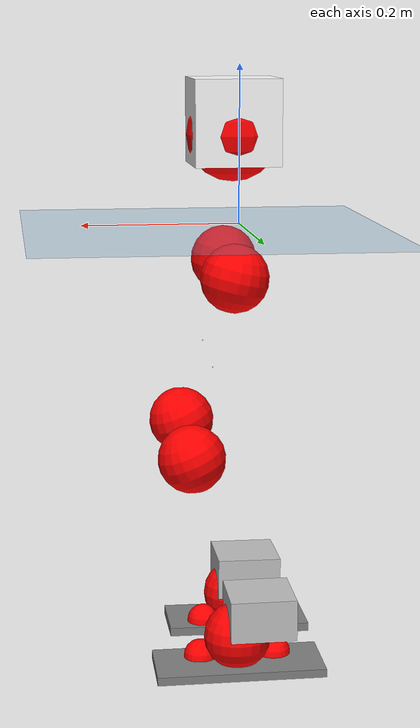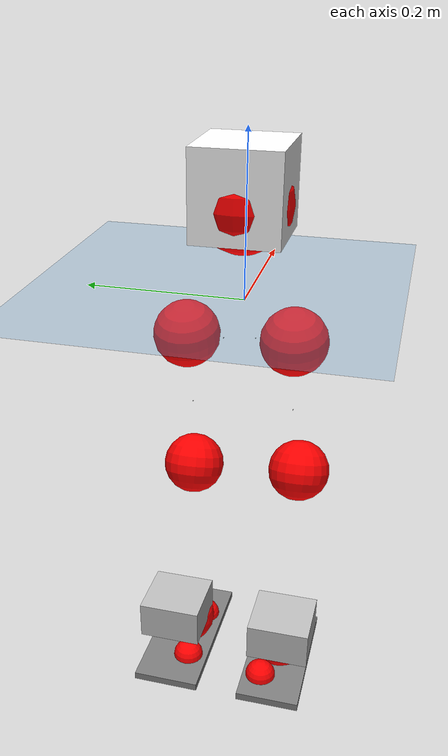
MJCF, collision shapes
<mujoco model="pi_12dof_release_v1">
  <compiler angle="radian" assetdir="assets" balanceinertia="true" inertiafromgeom="false"/>

  <option timestep="0.005" density="1.2" viscosity="2e-05"/>

  <size nkey="1"/>

  <visual>
    <quality shadowsize="8192"/>
    <map shadowclip="0.5"/>
  </visual>

  <default>
    <default class="/">
      <joint armature="0.01" damping="0.01" frictionloss="0.01"/>
      <geom contype="0" conaffinity="0" group="1" solref="-1000 -80"/>
      <site size="0.01 0.005 0.005" group="5"/>
      <general forcelimited="true" biastype="affine" gainprm="20" biasprm="0 -20 -0.5"/>
      <default class="foot">
        <geom size="0.0845 0.036 0.005" type="box" condim="6" group="4" priority="1" friction="0.9 0.2 0.2" solimp="0.015 1 0.005"/>
      </default>
      <default class="reward_collision_sphere">
        <geom group="5" rgba="1 0 0 1"/>
      </default>
    </default>
  </default>

  <asset>
    <texture type="skybox" colorspace="auto" name="//unnamed_texture_0" builtin="gradient" rgb1="0.95 0.95 0.95" rgb2="0.95 0.95 0.95" width="100" height="600"/>
    <texture type="2d" colorspace="auto" name="texplane" builtin="checker" rgb1="0.345 0.575 0.748" rgb2="0.345 0.575 0.748" markrgb="1 1 1" width="512" height="512"/>
    <material name="MatPlane" class="/" texture="texplane" texuniform="true" texrepeat="2 2" specular="0.9"/>
    <mesh name="baselink_1" class="/" file="baselink_1.STL"/>
    <mesh name="r_hip_pitch_link" class="/" file="r_hip_pitch_link.STL"/>
    <mesh name="r_hip_roll_link" class="/" file="r_hip_roll_link.STL"/>
    <mesh name="r_thigh_link" class="/" file="r_thigh_link.STL"/>
    <mesh name="r_calf_link" class="/" file="r_calf_link.STL"/>
    <mesh name="r_ankle_pitch_link" class="/" file="r_ankle_pitch_link.STL"/>
    <mesh name="r_ankle_roll_link" class="/" file="r_ankle_roll_link.STL"/>
    <mesh name="l_hip_pitch_link" class="/" file="l_hip_pitch_link.STL"/>
    <mesh name="l_hip_roll_link" class="/" file="l_hip_roll_link.STL"/>
    <mesh name="l_thigh_link" class="/" file="l_thigh_link.STL"/>
    <mesh name="l_calf_link" class="/" file="l_calf_link.STL"/>
    <mesh name="l_ankle_pitch_link" class="/" file="l_ankle_pitch_link.STL"/>
    <mesh name="l_ankle_roll_link" class="/" file="l_ankle_roll_link.STL"/>
  </asset>

  <worldbody>
    <geom name="floor" class="/" size="100 100 0.125" type="plane" group="0" material="MatPlane"/>
    <light name="toplight_shadow" class="/" pos="0 0 5" dir="0.0990148 0.0990148 -0.990148" type="directional" ambient="0.04 0.04 0.04" diffuse="0.55 0.55 0.55" specular="0.12 0.12 0.12"/>
    <light name="toplight_fill" class="/" pos="0 0 5" dir="0.0990148 0.0990148 -0.990148" type="directional" castshadow="false" ambient="0.04 0.04 0.04" diffuse="0.3 0.3 0.3" specular="0.08 0.08 0.08"/>
    <body name="trunk" pos="0.00817524 0.00412491 0.000558164" quat="0.999996 -0.000783471 0.00251519 -0.000974754">
      <inertial pos="0.0105896 -0.0032297 0.0634545" quat="0.696009 0.00876623 0.00751827 0.71794" mass="2.64037" diaginertia="0.0017311 0.00536872 0.0404868"/>
      <joint name="//unnamed_joint_0" type="free"/>
      <geom name="//unnamed_geom_1" class="/" type="mesh" density="0" rgba="1 1 1 1" mesh="baselink_1"/>
      <geom name="//unnamed_geom_2" class="/" size="0.0536593 0.0536593 0.0536593" pos="0 0 0.128724" type="box" rgba="1 1 1 1"/>
      <geom name="//unnamed_geom_3" class="reward_collision_sphere" size="0.0590253" pos="0 0 0.112633"/>
      <site name="imu" class="/" pos="0.00783134 -0.00126396 -0.00357312" size="0.0107319"/>
      <camera name="track" class="/" pos="0 -1.79981 0" quat="0.707107 0.707107 0 0" mode="trackcom"/>
      <camera name="ego_camera" class="/" pos="0.0532955 0 0.289629" quat="-0.5 -0.5 0.5 0.5"/>
      <body name="r_hip_pitch_link" pos="0.00285888 -0.0176287 -0.053607" quat="0.991769 -0.00222065 -0.128017 0.000696043">
        <inertial pos="0.00974946 -0.0478228 0.00174745" quat="-0.0157876 0.700982 -0.0229092 0.712636" mass="0.409663" diaginertia="1.76574e-05 5.81394e-05 0.000798858"/>
        <joint name="r_hip_pitch_joint" class="/" pos="0 0 0" axis="0.0162837 -0.999793 -0.0122082" stiffness="0.0411008" range="-1.74154 1.25474" armature="0.0104207" damping="0.0367269" frictionloss="0.00842756"/>
        <geom name="//unnamed_geom_4" class="/" type="mesh" density="0" rgba="0.75294 0.75294 0.75294 1" mesh="r_hip_pitch_link"/>
        <geom name="//unnamed_geom_5" class="/" size="0.000536593 0.000536593 0.000536593" type="box" rgba="0.75294 0.75294 0.75294 1"/>
        <body name="r_hip_roll_link" pos="0.000206946 -0.0484043 -0.000124453" quat="1 -5.88691e-05 3.02783e-05 1.88006e-05">
          <inertial pos="-0.00940904 0.00224606 -0.104838" quat="0.701476 -0.0827476 -0.0758816 0.703794" mass="0.477292" diaginertia="5.93456e-05 0.000166676 0.00140153"/>
          <joint name="r_hip_roll_joint" class="/" pos="0 0 0" axis="-0.999999 -0.00129021 0.00107827" range="-0.00349144 0.457216" armature="0.014871" damping="0.0282238" frictionloss="0.0116296"/>
          <geom name="//unnamed_geom_6" class="/" type="mesh" density="0" rgba="0.75294 0.75294 0.75294 1" mesh="r_hip_roll_link"/>
          <geom name="//unnamed_geom_7" class="/" size="0.000536593 0.000536593 0.000536593" type="box" rgba="0.75294 0.75294 0.75294 1"/>
          <geom name="//unnamed_geom_8" class="reward_collision_sphere" size="0.0429275"/>
          <body name="r_thigh_link" pos="-0.000506478 0.00166635 -0.112174" quat="0.999998 0.000325645 0.00141037 0.00108327">
            <inertial pos="-0.00277434 -0.000953389 -0.0717602" quat="0.752909 0.657698 0.0222505 -0.00811179" mass="0.140536" diaginertia="2.26217e-05 5.46215e-05 0.000654035"/>
            <joint name="r_thigh_joint" class="/" pos="0 0 0" axis="0.00242138 -0.0266064 -0.999643" stiffness="0.0412058" range="-0.28883 0.524388" armature="0.0143531" damping="0.00363344" frictionloss="0.0096847"/>
            <geom name="//unnamed_geom_9" class="/" type="mesh" density="0" rgba="0.75294 0.75294 0.75294 1" mesh="r_thigh_link"/>
            <geom name="//unnamed_geom_10" class="/" size="0.000536593 0.000536593 0.000536593" type="box" rgba="0.75294 0.75294 0.75294 1"/>
            <body name="r_calf_link" pos="-0.000481575 -0.00873224 -0.11235" quat="0.947652 9.56421e-05 0.319305 0.000672017">
              <inertial pos="-0.00553671 -0.000139172 -0.112362" quat="0.999907 -0.0122919 0.000138732 0.00588233" mass="0.833225" diaginertia="0.000592066 0.00192923 0.00186083"/>
              <joint name="r_calf_joint" class="/" pos="0 0 0" axis="-0.00127494 -0.999991 0.00398135" range="-1.68484 0.77808" armature="0.00530149" damping="0.0378654" frictionloss="0.00584202"/>
              <geom name="//unnamed_geom_11" class="/" type="mesh" density="0" rgba="0.75294 0.75294 0.75294 1" mesh="r_calf_link"/>
              <geom name="//unnamed_geom_12" class="/" size="0.000536593 0.000536593 0.000536593" type="box" rgba="0.75294 0.75294 0.75294 1"/>
              <geom name="//unnamed_geom_13" class="reward_collision_sphere" size="0.0429275"/>
              <body name="r_ankle_pitch_link" pos="0.00297314 -0.000388082 -0.232047" quat="0.979821 0.00144737 -0.199845 -0.00340405">
                <inertial pos="0.0077271 0.0120364 -0.000637403" quat="-0.00505341 0.709192 0.00305609 0.704991" mass="0.2432" diaginertia="5.63853e-05 0.000133041 0.00138543"/>
                <joint name="r_ankle_pitch_joint" class="/" pos="0 0 0" axis="-0.03173 -0.999018 0.0309239" stiffness="0.0392147" range="-1.18601 0.399723" armature="0.0097127" damping="0.00715637" frictionloss="0.0128139"/>
                <geom name="//unnamed_geom_14" class="/" type="mesh" density="0" rgba="0.75294 0.75294 0.75294 1" mesh="r_ankle_pitch_link"/>
                <geom name="//unnamed_geom_15" class="/" size="0.0418543 0.0429275 0.0268297" type="box" rgba="0.75294 0.75294 0.75294 1"/>
                <body name="r_ankle_roll_link" pos="0.0497489 0.00492791 0.00182899" quat="1 4.69397e-05 0.000110417 -3.00165e-05">
                  <inertial pos="-0.0189447 -0.00018911 -0.0239007" quat="0.552263 0.432233 0.438484 0.56206" mass="0.600313" diaginertia="0.000175287 0.000595573 0.00289813"/>
                  <joint name="r_ankle_roll_joint" class="/" pos="0 0 0" axis="-0.998703 0.0359101 0.0360976" stiffness="0.00658625" range="-0.192439 0.271085" armature="0.0117901" damping="0.0200897" frictionloss="0.0113746"/>
                  <geom name="//unnamed_geom_16" class="/" type="mesh" density="0" rgba="0.75294 0.75294 0.75294 1" mesh="r_ankle_roll_link"/>
                  <geom name="//unnamed_geom_17" class="/" type="mesh" rgba="0.75294 0.75294 0.75294 1" mesh="r_ankle_roll_link"/>
                  <geom name="right_foot" class="foot" size="0.0938497 0.0438419 0.00559955" pos="-0.0362409 0 -0.0707982"/>
                  <geom name="//unnamed_geom_19" class="reward_collision_sphere" size="0.0429275" pos="-0.0355303 0 -0.032181"/>
                  <geom name="//unnamed_geom_20" class="reward_collision_sphere" size="0.0214637" pos="0.0106591 0.0179981 -0.064362"/>
                  <geom name="//unnamed_geom_21" class="reward_collision_sphere" size="0.0214637" pos="-0.0852728 0.0179981 -0.064362"/>
                  <site name="right_foot" class="foot" pos="-0.0362409 0 -0.0707982" size="0.0107319"/>
                </body>
              </body>
            </body>
          </body>
        </body>
      </body>
      <body name="l_hip_pitch_link" pos="-0.00117873 0.022568 -0.0559675" quat="0.992403 -0.000600133 -0.122944 -0.0046245">
        <inertial pos="-0.0075714 0.0472684 0.00095973" quat="-0.0391191 0.705626 0.0303765 0.706852" mass="0.500351" diaginertia="2.38384e-05 5.98633e-05 0.00109967"/>
        <joint name="l_hip_pitch_joint" class="/" pos="0 0 0" axis="0.00441516 0.999963 0.00732687" range="-1.29994 1.78759" armature="0.00808008" damping="0.0276638" frictionloss="0.0102511"/>
        <geom name="//unnamed_geom_22" class="/" type="mesh" density="0" rgba="0.75294 0.75294 0.75294 1" mesh="l_hip_pitch_link"/>
        <geom name="//unnamed_geom_23" class="/" size="0.000536593 0.000536593 0.000536593" type="box" rgba="0.75294 0.75294 0.75294 1"/>
        <body name="l_hip_roll_link" pos="0.00758367 0.0497582 -0.00478971" quat="0.999993 -0.00380351 0.000645998 0.000321252">
          <inertial pos="-9.28383e-05 -0.000782553 -0.0996637" quat="0.698752 -0.101097 -0.0574875 0.705847" mass="0.514453" diaginertia="6.05989e-05 0.000173894 0.00138229"/>
          <joint name="l_hip_roll_joint" class="/" pos="0 0 0" axis="-0.999972 -0.00508529 -0.00552456" range="-0.509259 0.125491" armature="0.00804948" damping="0.0510642" frictionloss="0.00979982"/>
          <geom name="//unnamed_geom_24" class="/" type="mesh" density="0" rgba="0.75294 0.75294 0.75294 1" mesh="l_hip_roll_link"/>
          <geom name="//unnamed_geom_25" class="/" size="0.000536593 0.000536593 0.000536593" type="box" rgba="0.75294 0.75294 0.75294 1"/>
          <geom name="//unnamed_geom_26" class="reward_collision_sphere" size="0.0429275"/>
          <body name="l_thigh_link" pos="8.40265e-05 0.0013259 -0.113503" quat="0.999999 0.000687276 0.00101151 0.000118483">
            <inertial pos="-0.000172993 -0.0010053 -0.0791229" quat="0.673717 0.738989 -0.000835743 -0.000126682" mass="0.138107" diaginertia="2.2749e-05 5.7472e-05 0.000613902"/>
            <joint name="l_thigh_joint" class="/" pos="0 0 0" axis="-0.00347804 -0.00477264 -0.999983" range="-0.611565 0.2511" armature="0.0120845" damping="0" frictionloss="0.0097135"/>
            <geom name="//unnamed_geom_27" class="/" type="mesh" density="0" rgba="0.75294 0.75294 0.75294 1" mesh="l_thigh_link"/>
            <geom name="//unnamed_geom_28" class="/" size="0.000536593 0.000536593 0.000536593" type="box" rgba="0.75294 0.75294 0.75294 1"/>
            <body name="l_calf_link" pos="-0.00131013 0.0077847 -0.118692" quat="0.947484 -0.000880239 0.319796 -0.00189686">
              <inertial pos="0.000404863 -0.00195451 -0.111397" quat="0.999257 -0.0129092 0.0143078 0.0333746" mass="0.98417" diaginertia="0.00060652 0.00194794 0.00186672"/>
              <joint name="l_calf_joint" class="/" pos="0 0 0" axis="0.00136019 0.999803 -0.019813" range="-0.68187 1.69109" armature="0.0152702" damping="0" frictionloss="0.00623897"/>
              <geom name="//unnamed_geom_29" class="/" type="mesh" density="0" rgba="0.75294 0.75294 0.75294 1" mesh="l_calf_link"/>
              <geom name="//unnamed_geom_30" class="/" size="0.000536593 0.000536593 0.000536593" type="box" rgba="0.75294 0.75294 0.75294 1"/>
              <geom name="//unnamed_geom_31" class="reward_collision_sphere" size="0.0429275"/>
              <body name="l_ankle_pitch_link" pos="0.00167239 0.00459374 -0.21961" quat="0.980147 -2.05178e-05 -0.198272 -0.000451744">
                <inertial pos="0.00434979 0.000971182 0.00153659" quat="-0.00260653 0.707917 0.00261495 0.706286" mass="0.222711" diaginertia="5.65783e-05 0.000130719 0.00141402"/>
                <joint name="l_ankle_pitch_joint" class="/" pos="0 0 0" axis="-0.000501828 0.99996 0.0089039" range="-0.548117 1.30277" armature="0.0106583" damping="0" frictionloss="0.01022"/>
                <geom name="//unnamed_geom_32" class="/" type="mesh" density="0" rgba="0.75294 0.75294 0.75294 1" mesh="l_ankle_pitch_link"/>
                <geom name="//unnamed_geom_33" class="/" size="0.0418543 0.0429275 0.0268297" type="box" rgba="0.75294 0.75294 0.75294 1"/>
                <body name="l_ankle_roll_link" pos="0.0636814 -0.00487159 -0.00212657" quat="1 0.000818404 0.000256432 0.000155468">
                  <inertial pos="-0.0264421 -0.00260021 -0.0256104" quat="0.558293 0.432349 0.435503 0.558319" mass="0.62917" diaginertia="0.000220294 0.000711116 0.00322452"/>
                  <joint name="l_ankle_roll_joint" class="/" pos="0 0 0" axis="-0.999634 0.0269762 -0.00192919" stiffness="0.0137513" range="-0.171414 0.143295" armature="0.0118243" damping="0" frictionloss="0.0112345"/>
                  <geom name="//unnamed_geom_34" class="/" type="mesh" density="0" rgba="0.75294 0.75294 0.75294 1" mesh="l_ankle_roll_link"/>
                  <geom name="//unnamed_geom_35" class="/" type="mesh" rgba="0.75294 0.75294 0.75294 1" mesh="l_ankle_roll_link"/>
                  <geom name="left_foot" class="foot" size="0.107621 0.0462088 0.0053591" pos="-0.0362409 0 -0.0707982"/>
                  <geom name="//unnamed_geom_37" class="reward_collision_sphere" size="0.0429275" pos="-0.0355303 0 -0.032181"/>
                  <geom name="//unnamed_geom_38" class="reward_collision_sphere" size="0.0214637" pos="0.0106591 -0.0179981 -0.064362"/>
                  <geom name="//unnamed_geom_39" class="reward_collision_sphere" size="0.0214637" pos="-0.0852728 -0.0179981 -0.064362"/>
                  <site name="left_foot" class="foot" pos="-0.0362409 0 -0.0707982" size="0.0107319"/>
                </body>
              </body>
            </body>
          </body>
        </body>
      </body>
    </body>
  </worldbody>

  <contact>
    <pair class="/" geom1="floor" geom2="right_foot" name="//unnamed_contact_1"/>
    <pair class="/" geom1="floor" geom2="left_foot" name="//unnamed_contact_0"/>
  </contact>

  <actuator>
    <general name="r_hip_pitch_joint" class="/" joint="r_hip_pitch_joint" forcerange="-21.5275 21.5275" gainprm="22.4618" biasprm="0 -22.4618 -0.572728"/>
    <general name="r_hip_roll_joint" class="/" joint="r_hip_roll_joint" forcerange="-23.0255 23.0255" gainprm="22.4618" biasprm="0 -22.4618 -0.572728"/>
    <general name="r_thigh_joint" class="/" joint="r_thigh_joint" forcerange="-22.6009 22.6009" gainprm="22.4618" biasprm="0 -22.4618 -0.572728"/>
    <general name="r_calf_joint" class="/" joint="r_calf_joint" forcerange="-21.1185 21.1185" gainprm="22.4618" biasprm="0 -22.4618 -0.572728"/>
    <general name="r_ankle_pitch_joint" class="/" joint="r_ankle_pitch_joint" forcerange="-23.7587 23.7587" gainprm="22.4618" biasprm="0 -22.4618 -0.572728"/>
    <general name="r_ankle_roll_joint" class="/" joint="r_ankle_roll_joint" forcerange="-21.1521 21.1521" gainprm="22.4618" biasprm="0 -22.4618 -0.572728"/>
    <general name="l_hip_pitch_joint" class="/" joint="l_hip_pitch_joint" forcerange="-21.1238 21.1238" gainprm="22.4618" biasprm="0 -22.4618 -0.572728"/>
    <general name="l_hip_roll_joint" class="/" joint="l_hip_roll_joint" forcerange="-24.2643 24.2643" gainprm="22.4618" biasprm="0 -22.4618 -0.572728"/>
    <general name="l_thigh_joint" class="/" joint="l_thigh_joint" forcerange="-22.5178 22.5178" gainprm="22.4618" biasprm="0 -22.4618 -0.572728"/>
    <general name="l_calf_joint" class="/" joint="l_calf_joint" forcerange="-14.7728 14.7728" gainprm="22.4618" biasprm="0 -22.4618 -0.572728"/>
    <general name="l_ankle_pitch_joint" class="/" joint="l_ankle_pitch_joint" forcerange="-23.0574 23.0574" gainprm="22.4618" biasprm="0 -22.4618 -0.572728"/>
    <general name="l_ankle_roll_joint" class="/" joint="l_ankle_roll_joint" forcerange="-26.5244 26.5244" gainprm="22.4618" biasprm="0 -22.4618 -0.572728"/>
  </actuator>

  <sensor>
    <gyro site="imu" name="imu_angular_velocity"/>
    <velocimeter site="imu" name="imu_linear_velocity"/>
    <framelinvel objtype="site" objname="left_foot" name="left_foot_global_linear_velocity"/>
    <framelinvel objtype="site" objname="right_foot" name="right_foot_global_linear_velocity"/>
  </sensor>

  <keyframe>
    <key name="home" qpos="0 0 0.291 1 0 0 0 0.4 0 0 -0.8 0.4 0 -0.4 0 0 0.8 -0.4 0"/>
  </keyframe>
</mujoco>
